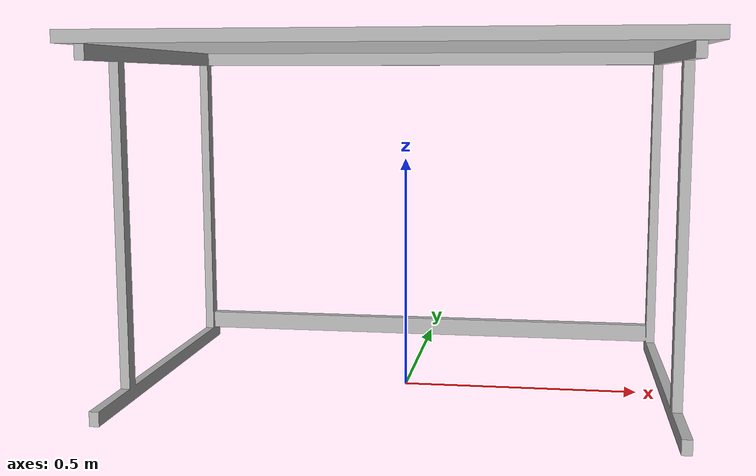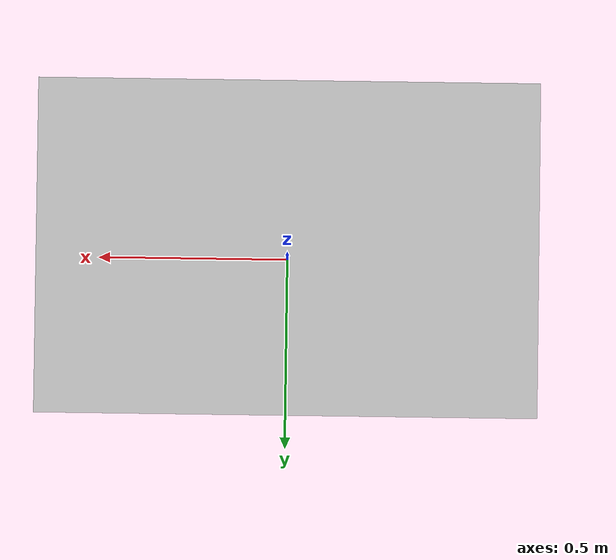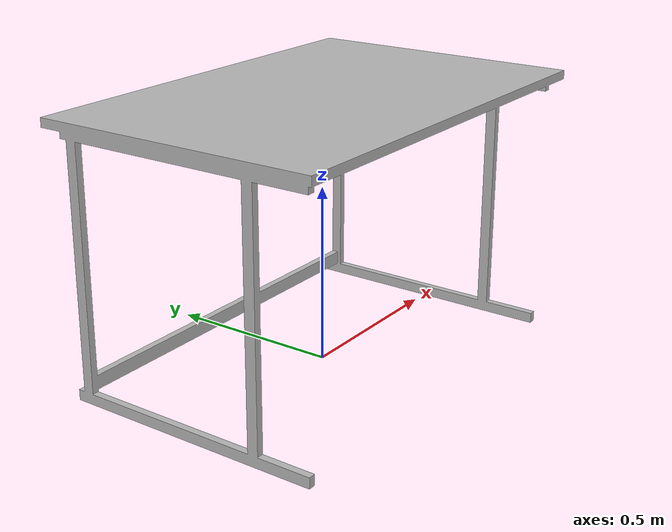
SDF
<?xml version="1.0"?>
<sdf version="1.5">
<model name="stul_120">
	<pose>0 0 0 0 0 0</pose>
	<static>true</static>
	<link name="stul_120_collision">
		<collision name="stul_120_collision">
		<geometry>
			<mesh>
				<uri>model://stul_120/meshes/model.dae</uri>

			</mesh>
		</geometry>
		</collision>
	<visual name="stul_120_mesh">
	<cast_shadows>false</cast_shadows>
		<geometry>
			<mesh>
				<uri> model://stul_120/meshes/model.dae</uri>

			</mesh>
		</geometry>
		<material>
		<script>
			<uri> model://stul_120/material/scripts</uri>
			<uri> model://stul_120/material/textures</uri>
			<name>stul_120/Diffuse</name>
		</script>
		</material>

	</visual>
</link>
</model>
</sdf>
